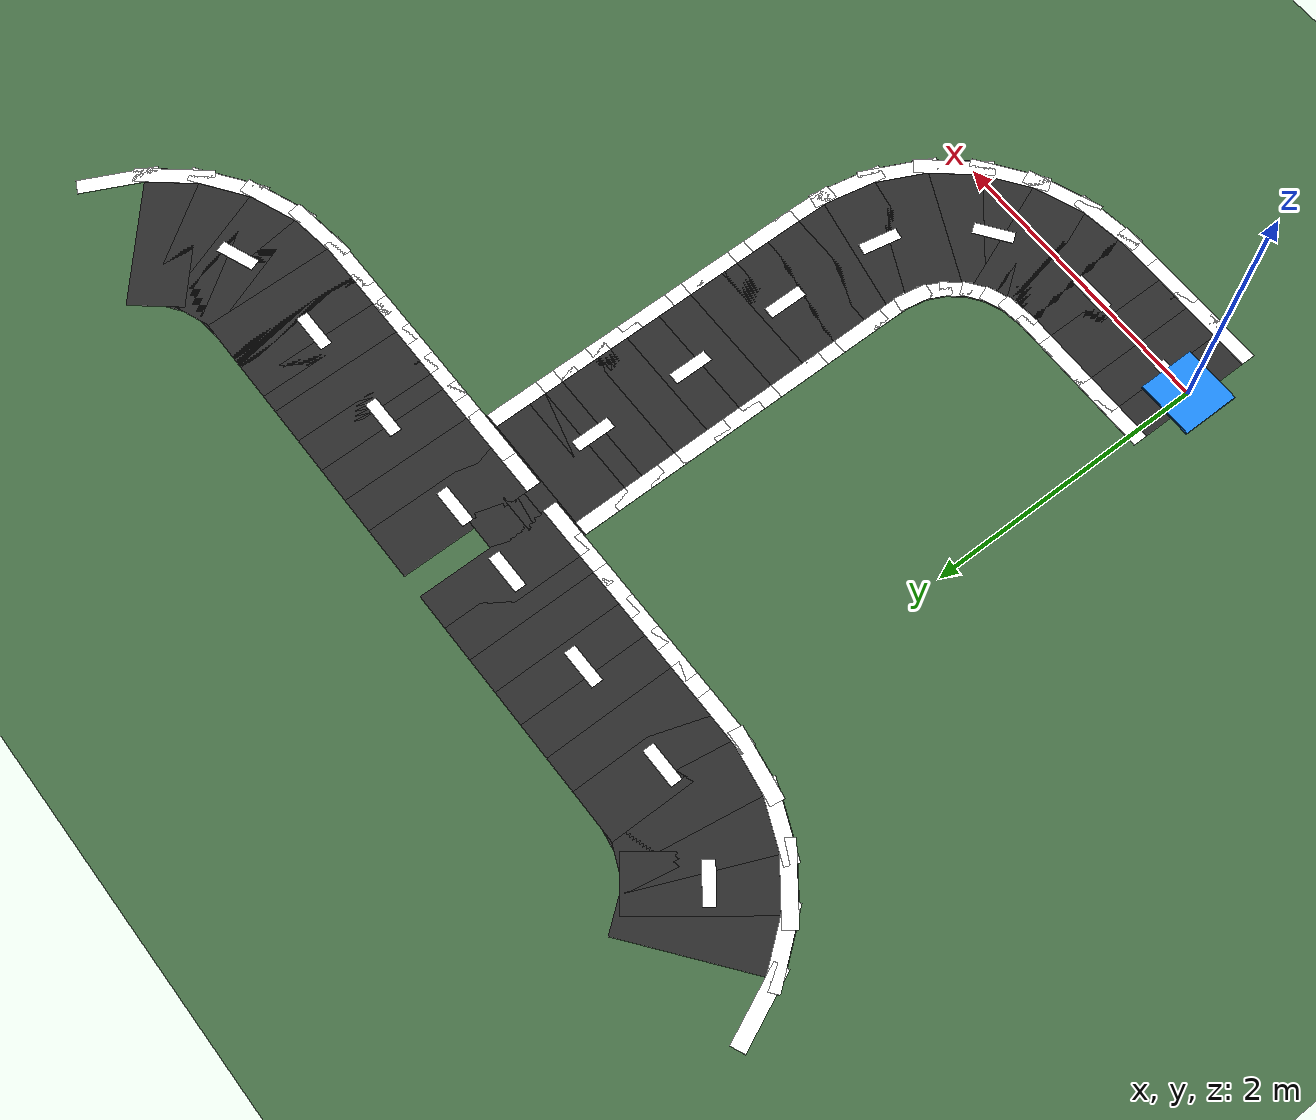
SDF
<sdf version="1.6">
 <world name="university_track">
  <model name="ground_plane">
   <static>true</static>
   <link name="link">
    <collision name="collision">
     <geometry><plane><normal>0 0 1</normal><size>200 200</size></plane></geometry>
    </collision>
    <visual name="visual">
     <geometry><plane><normal>0 0 1</normal><size>200 200</size></plane></geometry>
     <material><ambient>0.25 0.40 0.25 1</ambient><diffuse>0.25 0.40 0.25 1</diffuse></material>
    </visual>
   </link>
  </model>
  <model name="loop_0_0">
   <static>true</static>
   <pose>2.1250 4.0000 0.0020 0 0 0.00000</pose>
   <link name="l">
    <visual name="v">
     <geometry><box><size>0.3700 1.0000 0.0020</size></box></geometry>
     <material><ambient>0.15 0.15 0.15 1</ambient><diffuse>0.15 0.15 0.15 1</diffuse></material>
    </visual>
   </link>
  </model>
  <model name="loop_1_0">
   <static>true</static>
   <pose>2.3750 4.0000 0.0020 0 0 0.00000</pose>
   <link name="l">
    <visual name="v">
     <geometry><box><size>0.3700 1.0000 0.0020</size></box></geometry>
     <material><ambient>0.15 0.15 0.15 1</ambient><diffuse>0.15 0.15 0.15 1</diffuse></material>
    </visual>
   </link>
  </model>
  <model name="loop_2_0">
   <static>true</static>
   <pose>2.6250 4.0000 0.0020 0 0 0.00000</pose>
   <link name="l">
    <visual name="v">
     <geometry><box><size>0.3700 1.0000 0.0020</size></box></geometry>
     <material><ambient>0.15 0.15 0.15 1</ambient><diffuse>0.15 0.15 0.15 1</diffuse></material>
    </visual>
   </link>
  </model>
  <model name="loop_3_0">
   <static>true</static>
   <pose>2.8750 4.0000 0.0020 0 0 0.00000</pose>
   <link name="l">
    <visual name="v">
     <geometry><box><size>0.3700 1.0000 0.0020</size></box></geometry>
     <material><ambient>0.15 0.15 0.15 1</ambient><diffuse>0.15 0.15 0.15 1</diffuse></material>
    </visual>
   </link>
  </model>
  <model name="loop_4_0">
   <static>true</static>
   <pose>3.1250 4.0000 0.0020 0 0 0.00000</pose>
   <link name="l">
    <visual name="v">
     <geometry><box><size>0.3700 1.0000 0.0020</size></box></geometry>
     <material><ambient>0.15 0.15 0.15 1</ambient><diffuse>0.15 0.15 0.15 1</diffuse></material>
    </visual>
   </link>
  </model>
  <model name="loop_5_0">
   <static>true</static>
   <pose>3.3750 4.0000 0.0020 0 0 0.00000</pose>
   <link name="l">
    <visual name="v">
     <geometry><box><size>0.3700 1.0000 0.0020</size></box></geometry>
     <material><ambient>0.15 0.15 0.15 1</ambient><diffuse>0.15 0.15 0.15 1</diffuse></material>
    </visual>
   </link>
  </model>
  <model name="loop_6_0">
   <static>true</static>
   <pose>3.6250 4.0000 0.0020 0 0 0.00000</pose>
   <link name="l">
    <visual name="v">
     <geometry><box><size>0.3700 1.0000 0.0020</size></box></geometry>
     <material><ambient>0.15 0.15 0.15 1</ambient><diffuse>0.15 0.15 0.15 1</diffuse></material>
    </visual>
   </link>
  </model>
  <model name="loop_7_0">
   <static>true</static>
   <pose>3.8750 4.0000 0.0020 0 0 0.00000</pose>
   <link name="l">
    <visual name="v">
     <geometry><box><size>0.3700 1.0000 0.0020</size></box></geometry>
     <material><ambient>0.15 0.15 0.15 1</ambient><diffuse>0.15 0.15 0.15 1</diffuse></material>
    </visual>
   </link>
  </model>
  <model name="loop_8_0">
   <static>true</static>
   <pose>4.1236 4.0162 0.0020 0 0 0.13023</pose>
   <link name="l">
    <visual name="v">
     <geometry><box><size>0.3690 1.0000 0.0020</size></box></geometry>
     <material><ambient>0.15 0.15 0.15 1</ambient><diffuse>0.15 0.15 0.15 1</diffuse></material>
    </visual>
   </link>
  </model>
  <model name="loop_9_0">
   <static>true</static>
   <pose>4.3632 4.0779 0.0020 0 0 0.37377</pose>
   <link name="l">
    <visual name="v">
     <geometry><box><size>0.3689 1.0000 0.0020</size></box></geometry>
     <material><ambient>0.15 0.15 0.15 1</ambient><diffuse>0.15 0.15 0.15 1</diffuse></material>
    </visual>
   </link>
  </model>
  <model name="loop_10_0">
   <static>true</static>
   <pose>4.5803 4.1962 0.0020 0 0 0.62451</pose>
   <link name="l">
    <visual name="v">
     <geometry><box><size>0.3689 1.0000 0.0020</size></box></geometry>
     <material><ambient>0.15 0.15 0.15 1</ambient><diffuse>0.15 0.15 0.15 1</diffuse></material>
    </visual>
   </link>
  </model>
  <model name="loop_11_0">
   <static>true</static>
   <pose>4.7610 4.3650 0.0020 0 0 0.87778</pose>
   <link name="l">
    <visual name="v">
     <geometry><box><size>0.3689 1.0000 0.0020</size></box></geometry>
     <material><ambient>0.15 0.15 0.15 1</ambient><diffuse>0.15 0.15 0.15 1</diffuse></material>
    </visual>
   </link>
  </model>
  <model name="loop_77_0">
   <static>true</static>
   <pose>-0.7801 4.3881 0.0020 0 0 -0.90977</pose>
   <link name="l">
    <visual name="v">
     <geometry><box><size>0.3690 1.0000 0.0020</size></box></geometry>
     <material><ambient>0.15 0.15 0.15 1</ambient><diffuse>0.15 0.15 0.15 1</diffuse></material>
    </visual>
   </link>
  </model>
  <model name="loop_78_0">
   <static>true</static>
   <pose>-0.6045 4.2142 0.0020 0 0 -0.65125</pose>
   <link name="l">
    <visual name="v">
     <geometry><box><size>0.3690 1.0000 0.0020</size></box></geometry>
     <material><ambient>0.15 0.15 0.15 1</ambient><diffuse>0.15 0.15 0.15 1</diffuse></material>
    </visual>
   </link>
  </model>
  <model name="loop_79_0">
   <static>true</static>
   <pose>-0.3910 4.0893 0.0020 0 0 -0.40771</pose>
   <link name="l">
    <visual name="v">
     <geometry><box><size>0.3689 1.0000 0.0020</size></box></geometry>
     <material><ambient>0.15 0.15 0.15 1</ambient><diffuse>0.15 0.15 0.15 1</diffuse></material>
    </visual>
   </link>
  </model>
  <model name="loop_80_0">
   <static>true</static>
   <pose>-0.1535 4.0203 0.0020 0 0 -0.15731</pose>
   <link name="l">
    <visual name="v">
     <geometry><box><size>0.3690 1.0000 0.0020</size></box></geometry>
     <material><ambient>0.15 0.15 0.15 1</ambient><diffuse>0.15 0.15 0.15 1</diffuse></material>
    </visual>
   </link>
  </model>
  <model name="loop_81_0">
   <static>true</static>
   <pose>0.0946 4.0004 0.0020 0 0 -0.00318</pose>
   <link name="l">
    <visual name="v">
     <geometry><box><size>0.3700 1.0000 0.0020</size></box></geometry>
     <material><ambient>0.15 0.15 0.15 1</ambient><diffuse>0.15 0.15 0.15 1</diffuse></material>
    </visual>
   </link>
  </model>
  <model name="loop_82_0">
   <static>true</static>
   <pose>0.3446 4.0000 0.0020 0 0 0.00000</pose>
   <link name="l">
    <visual name="v">
     <geometry><box><size>0.3700 1.0000 0.0020</size></box></geometry>
     <material><ambient>0.15 0.15 0.15 1</ambient><diffuse>0.15 0.15 0.15 1</diffuse></material>
    </visual>
   </link>
  </model>
  <model name="loop_83_0">
   <static>true</static>
   <pose>0.5946 4.0000 0.0020 0 0 0.00000</pose>
   <link name="l">
    <visual name="v">
     <geometry><box><size>0.3700 1.0000 0.0020</size></box></geometry>
     <material><ambient>0.15 0.15 0.15 1</ambient><diffuse>0.15 0.15 0.15 1</diffuse></material>
    </visual>
   </link>
  </model>
  <model name="loop_84_0">
   <static>true</static>
   <pose>0.8446 4.0000 0.0020 0 0 -0.00000</pose>
   <link name="l">
    <visual name="v">
     <geometry><box><size>0.3700 1.0000 0.0020</size></box></geometry>
     <material><ambient>0.15 0.15 0.15 1</ambient><diffuse>0.15 0.15 0.15 1</diffuse></material>
    </visual>
   </link>
  </model>
  <model name="loop_85_0">
   <static>true</static>
   <pose>1.0946 4.0000 0.0020 0 0 0.00000</pose>
   <link name="l">
    <visual name="v">
     <geometry><box><size>0.3700 1.0000 0.0020</size></box></geometry>
     <material><ambient>0.15 0.15 0.15 1</ambient><diffuse>0.15 0.15 0.15 1</diffuse></material>
    </visual>
   </link>
  </model>
  <model name="loop_86_0">
   <static>true</static>
   <pose>1.3446 4.0000 0.0020 0 0 0.00000</pose>
   <link name="l">
    <visual name="v">
     <geometry><box><size>0.3700 1.0000 0.0020</size></box></geometry>
     <material><ambient>0.15 0.15 0.15 1</ambient><diffuse>0.15 0.15 0.15 1</diffuse></material>
    </visual>
   </link>
  </model>
  <model name="loop_87_0">
   <static>true</static>
   <pose>1.5946 4.0000 0.0020 0 0 0.00000</pose>
   <link name="l">
    <visual name="v">
     <geometry><box><size>0.3700 1.0000 0.0020</size></box></geometry>
     <material><ambient>0.15 0.15 0.15 1</ambient><diffuse>0.15 0.15 0.15 1</diffuse></material>
    </visual>
   </link>
  </model>
  <model name="loop_re_0_0">
   <static>true</static>
   <pose>2.1250 3.5500 0.0050 0 0 0.00000</pose>
   <link name="l">
    <visual name="v">
     <geometry><box><size>0.3700 0.1000 0.0020</size></box></geometry>
     <material><ambient>1.0 1.0 1.0 1</ambient><diffuse>1.0 1.0 1.0 1</diffuse></material>
    </visual>
   </link>
  </model>
  <model name="loop_re_1_0">
   <static>true</static>
   <pose>2.3750 3.5500 0.0050 0 0 0.00000</pose>
   <link name="l">
    <visual name="v">
     <geometry><box><size>0.3700 0.1000 0.0020</size></box></geometry>
     <material><ambient>1.0 1.0 1.0 1</ambient><diffuse>1.0 1.0 1.0 1</diffuse></material>
    </visual>
   </link>
  </model>
  <model name="loop_re_2_0">
   <static>true</static>
   <pose>2.6250 3.5500 0.0050 0 0 0.00000</pose>
   <link name="l">
    <visual name="v">
     <geometry><box><size>0.3700 0.1000 0.0020</size></box></geometry>
     <material><ambient>1.0 1.0 1.0 1</ambient><diffuse>1.0 1.0 1.0 1</diffuse></material>
    </visual>
   </link>
  </model>
  <model name="loop_re_3_0">
   <static>true</static>
   <pose>2.8750 3.5500 0.0050 0 0 0.00000</pose>
   <link name="l">
    <visual name="v">
     <geometry><box><size>0.3700 0.1000 0.0020</size></box></geometry>
     <material><ambient>1.0 1.0 1.0 1</ambient><diffuse>1.0 1.0 1.0 1</diffuse></material>
    </visual>
   </link>
  </model>
  <model name="loop_re_4_0">
   <static>true</static>
   <pose>3.1250 3.5500 0.0050 0 0 0.00000</pose>
   <link name="l">
    <visual name="v">
     <geometry><box><size>0.3700 0.1000 0.0020</size></box></geometry>
     <material><ambient>1.0 1.0 1.0 1</ambient><diffuse>1.0 1.0 1.0 1</diffuse></material>
    </visual>
   </link>
  </model>
  <model name="loop_re_5_0">
   <static>true</static>
   <pose>3.3750 3.5500 0.0050 0 0 0.00000</pose>
   <link name="l">
    <visual name="v">
     <geometry><box><size>0.3700 0.1000 0.0020</size></box></geometry>
     <material><ambient>1.0 1.0 1.0 1</ambient><diffuse>1.0 1.0 1.0 1</diffuse></material>
    </visual>
   </link>
  </model>
  <model name="loop_re_6_0">
   <static>true</static>
   <pose>3.6250 3.5500 0.0050 0 0 0.00000</pose>
   <link name="l">
    <visual name="v">
     <geometry><box><size>0.3700 0.1000 0.0020</size></box></geometry>
     <material><ambient>1.0 1.0 1.0 1</ambient><diffuse>1.0 1.0 1.0 1</diffuse></material>
    </visual>
   </link>
  </model>
  <model name="loop_re_7_0">
   <static>true</static>
   <pose>3.8896 3.5505 0.0050 0 0 0.00341</pose>
   <link name="l">
    <visual name="v">
     <geometry><box><size>0.4109 0.1000 0.0020</size></box></geometry>
     <material><ambient>1.0 1.0 1.0 1</ambient><diffuse>1.0 1.0 1.0 1</diffuse></material>
    </visual>
   </link>
  </model>
  <model name="loop_re_8_0">
   <static>true</static>
   <pose>4.1943 3.5738 0.0050 0 0 0.13736</pose>
   <link name="l">
    <visual name="v">
     <geometry><box><size>0.4866 0.1000 0.0020</size></box></geometry>
     <material><ambient>1.0 1.0 1.0 1</ambient><diffuse>1.0 1.0 1.0 1</diffuse></material>
    </visual>
   </link>
  </model>
  <model name="loop_re_9_0">
   <static>true</static>
   <pose>4.5270 3.6624 0.0050 0 0 0.37433</pose>
   <link name="l">
    <visual name="v">
     <geometry><box><size>0.5242 0.1000 0.0020</size></box></geometry>
     <material><ambient>1.0 1.0 1.0 1</ambient><diffuse>1.0 1.0 1.0 1</diffuse></material>
    </visual>
   </link>
  </model>
  <model name="loop_re_10_0">
   <static>true</static>
   <pose>4.8415 3.8342 0.0050 0 0 0.62471</pose>
   <link name="l">
    <visual name="v">
     <geometry><box><size>0.5272 0.1000 0.0020</size></box></geometry>
     <material><ambient>1.0 1.0 1.0 1</ambient><diffuse>1.0 1.0 1.0 1</diffuse></material>
    </visual>
   </link>
  </model>
  <model name="loop_re_11_0">
   <static>true</static>
   <pose>5.1038 4.0788 0.0050 0 0 0.87703</pose>
   <link name="l">
    <visual name="v">
     <geometry><box><size>0.5250 0.1000 0.0020</size></box></geometry>
     <material><ambient>1.0 1.0 1.0 1</ambient><diffuse>1.0 1.0 1.0 1</diffuse></material>
    </visual>
   </link>
  </model>
  <model name="loop_re_12_0">
   <static>true</static>
   <pose>5.2976 4.3805 0.0050 0 0 1.12244</pose>
   <link name="l">
    <visual name="v">
     <geometry><box><size>0.5265 0.1000 0.0020</size></box></geometry>
     <material><ambient>1.0 1.0 1.0 1</ambient><diffuse>1.0 1.0 1.0 1</diffuse></material>
    </visual>
   </link>
  </model>
  <model name="loop_re_76_0">
   <static>true</static>
   <pose>-1.3156 4.4204 0.0050 0 0 -1.15541</pose>
   <link name="l">
    <visual name="v">
     <geometry><box><size>0.5238 0.1000 0.0020</size></box></geometry>
     <material><ambient>1.0 1.0 1.0 1</ambient><diffuse>1.0 1.0 1.0 1</diffuse></material>
    </visual>
   </link>
  </model>
  <model name="loop_re_77_0">
   <static>true</static>
   <pose>-1.1316 4.1129 0.0050 0 0 -0.90875</pose>
   <link name="l">
    <visual name="v">
     <geometry><box><size>0.5273 0.1000 0.0020</size></box></geometry>
     <material><ambient>1.0 1.0 1.0 1</ambient><diffuse>1.0 1.0 1.0 1</diffuse></material>
    </visual>
   </link>
  </model>
  <model name="loop_re_78_0">
   <static>true</static>
   <pose>-0.8765 3.8602 0.0050 0 0 -0.65242</pose>
   <link name="l">
    <visual name="v">
     <geometry><box><size>0.5267 0.1000 0.0020</size></box></geometry>
     <material><ambient>1.0 1.0 1.0 1</ambient><diffuse>1.0 1.0 1.0 1</diffuse></material>
    </visual>
   </link>
  </model>
  <model name="loop_re_79_0">
   <static>true</static>
   <pose>-0.5674 3.6790 0.0050 0 0 -0.40718</pose>
   <link name="l">
    <visual name="v">
     <geometry><box><size>0.5241 0.1000 0.0020</size></box></geometry>
     <material><ambient>1.0 1.0 1.0 1</ambient><diffuse>1.0 1.0 1.0 1</diffuse></material>
    </visual>
   </link>
  </model>
  <model name="loop_re_80_0">
   <static>true</static>
   <pose>-0.2342 3.5800 0.0050 0 0 -0.16372</pose>
   <link name="l">
    <visual name="v">
     <geometry><box><size>0.4962 0.1000 0.0020</size></box></geometry>
     <material><ambient>1.0 1.0 1.0 1</ambient><diffuse>1.0 1.0 1.0 1</diffuse></material>
    </visual>
   </link>
  </model>
  <model name="loop_re_81_0">
   <static>true</static>
   <pose>0.0762 3.5511 0.0050 0 0 -0.00785</pose>
   <link name="l">
    <visual name="v">
     <geometry><box><size>0.4194 0.1000 0.0020</size></box></geometry>
     <material><ambient>1.0 1.0 1.0 1</ambient><diffuse>1.0 1.0 1.0 1</diffuse></material>
    </visual>
   </link>
  </model>
  <model name="loop_re_82_0">
   <static>true</static>
   <pose>0.3443 3.5500 0.0050 0 0 -0.00000</pose>
   <link name="l">
    <visual name="v">
     <geometry><box><size>0.3710 0.1000 0.0020</size></box></geometry>
     <material><ambient>1.0 1.0 1.0 1</ambient><diffuse>1.0 1.0 1.0 1</diffuse></material>
    </visual>
   </link>
  </model>
  <model name="loop_re_83_0">
   <static>true</static>
   <pose>0.5946 3.5500 0.0050 0 0 0.00000</pose>
   <link name="l">
    <visual name="v">
     <geometry><box><size>0.3700 0.1000 0.0020</size></box></geometry>
     <material><ambient>1.0 1.0 1.0 1</ambient><diffuse>1.0 1.0 1.0 1</diffuse></material>
    </visual>
   </link>
  </model>
  <model name="loop_re_84_0">
   <static>true</static>
   <pose>0.8446 3.5500 0.0050 0 0 -0.00000</pose>
   <link name="l">
    <visual name="v">
     <geometry><box><size>0.3700 0.1000 0.0020</size></box></geometry>
     <material><ambient>1.0 1.0 1.0 1</ambient><diffuse>1.0 1.0 1.0 1</diffuse></material>
    </visual>
   </link>
  </model>
  <model name="loop_re_85_0">
   <static>true</static>
   <pose>1.0946 3.5500 0.0050 0 0 0.00000</pose>
   <link name="l">
    <visual name="v">
     <geometry><box><size>0.3700 0.1000 0.0020</size></box></geometry>
     <material><ambient>1.0 1.0 1.0 1</ambient><diffuse>1.0 1.0 1.0 1</diffuse></material>
    </visual>
   </link>
  </model>
  <model name="loop_re_86_0">
   <static>true</static>
   <pose>1.3446 3.5500 0.0050 0 0 0.00000</pose>
   <link name="l">
    <visual name="v">
     <geometry><box><size>0.3700 0.1000 0.0020</size></box></geometry>
     <material><ambient>1.0 1.0 1.0 1</ambient><diffuse>1.0 1.0 1.0 1</diffuse></material>
    </visual>
   </link>
  </model>
  <model name="loop_re_87_0">
   <static>true</static>
   <pose>1.5946 3.5500 0.0050 0 0 0.00000</pose>
   <link name="l">
    <visual name="v">
     <geometry><box><size>0.3700 0.1000 0.0020</size></box></geometry>
     <material><ambient>1.0 1.0 1.0 1</ambient><diffuse>1.0 1.0 1.0 1</diffuse></material>
    </visual>
   </link>
  </model>
  <model name="loop_cd_0_0">
   <static>true</static>
   <pose>2.1250 4.0000 0.0050 0 0 0.00000</pose>
   <link name="l">
    <visual name="v">
     <geometry><box><size>0.2700 0.0800 0.0020</size></box></geometry>
     <material><ambient>1.0 1.0 1.0 1</ambient><diffuse>1.0 1.0 1.0 1</diffuse></material>
    </visual>
   </link>
  </model>
  <model name="loop_cd_3_0">
   <static>true</static>
   <pose>2.8750 4.0000 0.0050 0 0 0.00000</pose>
   <link name="l">
    <visual name="v">
     <geometry><box><size>0.2700 0.0800 0.0020</size></box></geometry>
     <material><ambient>1.0 1.0 1.0 1</ambient><diffuse>1.0 1.0 1.0 1</diffuse></material>
    </visual>
   </link>
  </model>
  <model name="loop_cd_6_0">
   <static>true</static>
   <pose>3.6250 4.0000 0.0050 0 0 0.00000</pose>
   <link name="l">
    <visual name="v">
     <geometry><box><size>0.2700 0.0800 0.0020</size></box></geometry>
     <material><ambient>1.0 1.0 1.0 1</ambient><diffuse>1.0 1.0 1.0 1</diffuse></material>
    </visual>
   </link>
  </model>
  <model name="loop_cd_9_0">
   <static>true</static>
   <pose>4.3632 4.0779 0.0050 0 0 0.37377</pose>
   <link name="l">
    <visual name="v">
     <geometry><box><size>0.2692 0.0800 0.0020</size></box></geometry>
     <material><ambient>1.0 1.0 1.0 1</ambient><diffuse>1.0 1.0 1.0 1</diffuse></material>
    </visual>
   </link>
  </model>
  <model name="loop_cd_78_0">
   <static>true</static>
   <pose>-0.6045 4.2142 0.0050 0 0 -0.65125</pose>
   <link name="l">
    <visual name="v">
     <geometry><box><size>0.2693 0.0800 0.0020</size></box></geometry>
     <material><ambient>1.0 1.0 1.0 1</ambient><diffuse>1.0 1.0 1.0 1</diffuse></material>
    </visual>
   </link>
  </model>
  <model name="loop_cd_81_0">
   <static>true</static>
   <pose>0.0946 4.0004 0.0050 0 0 -0.00318</pose>
   <link name="l">
    <visual name="v">
     <geometry><box><size>0.2700 0.0800 0.0020</size></box></geometry>
     <material><ambient>1.0 1.0 1.0 1</ambient><diffuse>1.0 1.0 1.0 1</diffuse></material>
    </visual>
   </link>
  </model>
  <model name="loop_cd_84_0">
   <static>true</static>
   <pose>0.8446 4.0000 0.0050 0 0 -0.00000</pose>
   <link name="l">
    <visual name="v">
     <geometry><box><size>0.2700 0.0800 0.0020</size></box></geometry>
     <material><ambient>1.0 1.0 1.0 1</ambient><diffuse>1.0 1.0 1.0 1</diffuse></material>
    </visual>
   </link>
  </model>
  <model name="loop_cd_87_0">
   <static>true</static>
   <pose>1.5946 4.0000 0.0050 0 0 0.00000</pose>
   <link name="l">
    <visual name="v">
     <geometry><box><size>0.2700 0.0800 0.0020</size></box></geometry>
     <material><ambient>1.0 1.0 1.0 1</ambient><diffuse>1.0 1.0 1.0 1</diffuse></material>
    </visual>
   </link>
  </model>
  <model name="branch_0_0">
   <static>true</static>
   <pose>0.1250 0.0000 0.0020 0 0 0.00000</pose>
   <link name="l">
    <visual name="v">
     <geometry><box><size>0.3700 1.0000 0.0020</size></box></geometry>
     <material><ambient>0.15 0.15 0.15 1</ambient><diffuse>0.15 0.15 0.15 1</diffuse></material>
    </visual>
   </link>
  </model>
  <model name="branch_1_0">
   <static>true</static>
   <pose>0.3750 0.0000 0.0020 0 0 0.00000</pose>
   <link name="l">
    <visual name="v">
     <geometry><box><size>0.3700 1.0000 0.0020</size></box></geometry>
     <material><ambient>0.15 0.15 0.15 1</ambient><diffuse>0.15 0.15 0.15 1</diffuse></material>
    </visual>
   </link>
  </model>
  <model name="branch_2_0">
   <static>true</static>
   <pose>0.6250 0.0000 0.0020 0 0 0.00000</pose>
   <link name="l">
    <visual name="v">
     <geometry><box><size>0.3700 1.0000 0.0020</size></box></geometry>
     <material><ambient>0.15 0.15 0.15 1</ambient><diffuse>0.15 0.15 0.15 1</diffuse></material>
    </visual>
   </link>
  </model>
  <model name="branch_3_0">
   <static>true</static>
   <pose>0.8750 0.0000 0.0020 0 0 0.00000</pose>
   <link name="l">
    <visual name="v">
     <geometry><box><size>0.3700 1.0000 0.0020</size></box></geometry>
     <material><ambient>0.15 0.15 0.15 1</ambient><diffuse>0.15 0.15 0.15 1</diffuse></material>
    </visual>
   </link>
  </model>
  <model name="branch_4_0">
   <static>true</static>
   <pose>1.1236 0.0162 0.0020 0 0 0.13023</pose>
   <link name="l">
    <visual name="v">
     <geometry><box><size>0.3690 1.0000 0.0020</size></box></geometry>
     <material><ambient>0.15 0.15 0.15 1</ambient><diffuse>0.15 0.15 0.15 1</diffuse></material>
    </visual>
   </link>
  </model>
  <model name="branch_5_0">
   <static>true</static>
   <pose>1.3632 0.0779 0.0020 0 0 0.37377</pose>
   <link name="l">
    <visual name="v">
     <geometry><box><size>0.3689 1.0000 0.0020</size></box></geometry>
     <material><ambient>0.15 0.15 0.15 1</ambient><diffuse>0.15 0.15 0.15 1</diffuse></material>
    </visual>
   </link>
  </model>
  <model name="branch_6_0">
   <static>true</static>
   <pose>1.5803 0.1962 0.0020 0 0 0.62451</pose>
   <link name="l">
    <visual name="v">
     <geometry><box><size>0.3689 1.0000 0.0020</size></box></geometry>
     <material><ambient>0.15 0.15 0.15 1</ambient><diffuse>0.15 0.15 0.15 1</diffuse></material>
    </visual>
   </link>
  </model>
  <model name="branch_7_0">
   <static>true</static>
   <pose>1.7610 0.3650 0.0020 0 0 0.87778</pose>
   <link name="l">
    <visual name="v">
     <geometry><box><size>0.3689 1.0000 0.0020</size></box></geometry>
     <material><ambient>0.15 0.15 0.15 1</ambient><diffuse>0.15 0.15 0.15 1</diffuse></material>
    </visual>
   </link>
  </model>
  <model name="branch_8_0">
   <static>true</static>
   <pose>1.8947 0.5731 0.0020 0 0 1.12132</pose>
   <link name="l">
    <visual name="v">
     <geometry><box><size>0.3690 1.0000 0.0020</size></box></geometry>
     <material><ambient>0.15 0.15 0.15 1</ambient><diffuse>0.15 0.15 0.15 1</diffuse></material>
    </visual>
   </link>
  </model>
  <model name="branch_9_0">
   <static>true</static>
   <pose>1.9726 0.8077 0.0020 0 0 1.37926</pose>
   <link name="l">
    <visual name="v">
     <geometry><box><size>0.3690 1.0000 0.0020</size></box></geometry>
     <material><ambient>0.15 0.15 0.15 1</ambient><diffuse>0.15 0.15 0.15 1</diffuse></material>
    </visual>
   </link>
  </model>
  <model name="branch_10_0">
   <static>true</static>
   <pose>1.9982 1.0550 0.0020 0 0 1.55612</pose>
   <link name="l">
    <visual name="v">
     <geometry><box><size>0.3699 1.0000 0.0020</size></box></geometry>
     <material><ambient>0.15 0.15 0.15 1</ambient><diffuse>0.15 0.15 0.15 1</diffuse></material>
    </visual>
   </link>
  </model>
  <model name="branch_11_0">
   <static>true</static>
   <pose>2.0000 1.3049 0.0020 0 0 1.57080</pose>
   <link name="l">
    <visual name="v">
     <geometry><box><size>0.3700 1.0000 0.0020</size></box></geometry>
     <material><ambient>0.15 0.15 0.15 1</ambient><diffuse>0.15 0.15 0.15 1</diffuse></material>
    </visual>
   </link>
  </model>
  <model name="branch_12_0">
   <static>true</static>
   <pose>2.0000 1.5549 0.0020 0 0 1.57080</pose>
   <link name="l">
    <visual name="v">
     <geometry><box><size>0.3700 1.0000 0.0020</size></box></geometry>
     <material><ambient>0.15 0.15 0.15 1</ambient><diffuse>0.15 0.15 0.15 1</diffuse></material>
    </visual>
   </link>
  </model>
  <model name="branch_13_0">
   <static>true</static>
   <pose>2.0000 1.8049 0.0020 0 0 1.57080</pose>
   <link name="l">
    <visual name="v">
     <geometry><box><size>0.3700 1.0000 0.0020</size></box></geometry>
     <material><ambient>0.15 0.15 0.15 1</ambient><diffuse>0.15 0.15 0.15 1</diffuse></material>
    </visual>
   </link>
  </model>
  <model name="branch_14_0">
   <static>true</static>
   <pose>2.0000 2.0549 0.0020 0 0 1.57080</pose>
   <link name="l">
    <visual name="v">
     <geometry><box><size>0.3700 1.0000 0.0020</size></box></geometry>
     <material><ambient>0.15 0.15 0.15 1</ambient><diffuse>0.15 0.15 0.15 1</diffuse></material>
    </visual>
   </link>
  </model>
  <model name="branch_15_0">
   <static>true</static>
   <pose>2.0000 2.3049 0.0020 0 0 1.57080</pose>
   <link name="l">
    <visual name="v">
     <geometry><box><size>0.3700 1.0000 0.0020</size></box></geometry>
     <material><ambient>0.15 0.15 0.15 1</ambient><diffuse>0.15 0.15 0.15 1</diffuse></material>
    </visual>
   </link>
  </model>
  <model name="branch_16_0">
   <static>true</static>
   <pose>2.0000 2.5549 0.0020 0 0 1.57080</pose>
   <link name="l">
    <visual name="v">
     <geometry><box><size>0.3700 1.0000 0.0020</size></box></geometry>
     <material><ambient>0.15 0.15 0.15 1</ambient><diffuse>0.15 0.15 0.15 1</diffuse></material>
    </visual>
   </link>
  </model>
  <model name="branch_17_0">
   <static>true</static>
   <pose>2.0000 2.8049 0.0020 0 0 1.57080</pose>
   <link name="l">
    <visual name="v">
     <geometry><box><size>0.3700 1.0000 0.0020</size></box></geometry>
     <material><ambient>0.15 0.15 0.15 1</ambient><diffuse>0.15 0.15 0.15 1</diffuse></material>
    </visual>
   </link>
  </model>
  <model name="branch_18_0">
   <static>true</static>
   <pose>2.0000 3.0549 0.0020 0 0 1.57080</pose>
   <link name="l">
    <visual name="v">
     <geometry><box><size>0.3700 1.0000 0.0020</size></box></geometry>
     <material><ambient>0.15 0.15 0.15 1</ambient><diffuse>0.15 0.15 0.15 1</diffuse></material>
    </visual>
   </link>
  </model>
  <model name="branch_19_0">
   <static>true</static>
   <pose>2.0000 3.3049 0.0020 0 0 1.57080</pose>
   <link name="l">
    <visual name="v">
     <geometry><box><size>0.3700 1.0000 0.0020</size></box></geometry>
     <material><ambient>0.15 0.15 0.15 1</ambient><diffuse>0.15 0.15 0.15 1</diffuse></material>
    </visual>
   </link>
  </model>
  <model name="branch_20_0">
   <static>true</static>
   <pose>2.0000 3.5549 0.0020 0 0 1.57080</pose>
   <link name="l">
    <visual name="v">
     <geometry><box><size>0.3700 1.0000 0.0020</size></box></geometry>
     <material><ambient>0.15 0.15 0.15 1</ambient><diffuse>0.15 0.15 0.15 1</diffuse></material>
    </visual>
   </link>
  </model>
  <model name="branch_21_0">
   <static>true</static>
   <pose>2.0000 3.8049 0.0020 0 0 1.57080</pose>
   <link name="l">
    <visual name="v">
     <geometry><box><size>0.3700 1.0000 0.0020</size></box></geometry>
     <material><ambient>0.15 0.15 0.15 1</ambient><diffuse>0.15 0.15 0.15 1</diffuse></material>
    </visual>
   </link>
  </model>
  <model name="branch_le_0_0">
   <static>true</static>
   <pose>0.1250 0.4500 0.0050 0 0 0.00000</pose>
   <link name="l">
    <visual name="v">
     <geometry><box><size>0.3700 0.1000 0.0020</size></box></geometry>
     <material><ambient>1.0 1.0 1.0 1</ambient><diffuse>1.0 1.0 1.0 1</diffuse></material>
    </visual>
   </link>
  </model>
  <model name="branch_le_1_0">
   <static>true</static>
   <pose>0.3750 0.4500 0.0050 0 0 0.00000</pose>
   <link name="l">
    <visual name="v">
     <geometry><box><size>0.3700 0.1000 0.0020</size></box></geometry>
     <material><ambient>1.0 1.0 1.0 1</ambient><diffuse>1.0 1.0 1.0 1</diffuse></material>
    </visual>
   </link>
  </model>
  <model name="branch_le_2_0">
   <static>true</static>
   <pose>0.6250 0.4500 0.0050 0 0 0.00000</pose>
   <link name="l">
    <visual name="v">
     <geometry><box><size>0.3700 0.1000 0.0020</size></box></geometry>
     <material><ambient>1.0 1.0 1.0 1</ambient><diffuse>1.0 1.0 1.0 1</diffuse></material>
    </visual>
   </link>
  </model>
  <model name="branch_le_3_0">
   <static>true</static>
   <pose>0.8604 0.4495 0.0050 0 0 -0.00431</pose>
   <link name="l">
    <visual name="v">
     <geometry><box><size>0.3291 0.1000 0.0020</size></box></geometry>
     <material><ambient>1.0 1.0 1.0 1</ambient><diffuse>1.0 1.0 1.0 1</diffuse></material>
    </visual>
   </link>
  </model>
  <model name="branch_le_4_0">
   <static>true</static>
   <pose>1.0529 0.4586 0.0050 0 0 0.11587</pose>
   <link name="l">
    <visual name="v">
     <geometry><box><size>0.2515 0.1000 0.0020</size></box></geometry>
     <material><ambient>1.0 1.0 1.0 1</ambient><diffuse>1.0 1.0 1.0 1</diffuse></material>
    </visual>
   </link>
  </model>
  <model name="branch_le_5_0">
   <static>true</static>
   <pose>1.1994 0.4933 0.0050 0 0 0.37234</pose>
   <link name="l">
    <visual name="v">
     <geometry><box><size>0.2136 0.1000 0.0020</size></box></geometry>
     <material><ambient>1.0 1.0 1.0 1</ambient><diffuse>1.0 1.0 1.0 1</diffuse></material>
    </visual>
   </link>
  </model>
  <model name="branch_le_6_0">
   <static>true</static>
   <pose>1.3190 0.5582 0.0050 0 0 0.62399</pose>
   <link name="l">
    <visual name="v">
     <geometry><box><size>0.2106 0.1000 0.0020</size></box></geometry>
     <material><ambient>1.0 1.0 1.0 1</ambient><diffuse>1.0 1.0 1.0 1</diffuse></material>
    </visual>
   </link>
  </model>
  <model name="branch_le_7_0">
   <static>true</static>
   <pose>1.4181 0.6511 0.0050 0 0 0.87974</pose>
   <link name="l">
    <visual name="v">
     <geometry><box><size>0.2128 0.1000 0.0020</size></box></geometry>
     <material><ambient>1.0 1.0 1.0 1</ambient><diffuse>1.0 1.0 1.0 1</diffuse></material>
    </visual>
   </link>
  </model>
  <model name="branch_le_8_0">
   <static>true</static>
   <pose>1.4919 0.7656 0.0050 0 0 1.11835</pose>
   <link name="l">
    <visual name="v">
     <geometry><box><size>0.2114 0.1000 0.0020</size></box></geometry>
     <material><ambient>1.0 1.0 1.0 1</ambient><diffuse>1.0 1.0 1.0 1</diffuse></material>
    </visual>
   </link>
  </model>
  <model name="branch_le_9_0">
   <static>true</static>
   <pose>1.5353 0.9017 0.0050 0 0 1.39229</pose>
   <link name="l">
    <visual name="v">
     <geometry><box><size>0.2322 0.1000 0.0020</size></box></geometry>
     <material><ambient>1.0 1.0 1.0 1</ambient><diffuse>1.0 1.0 1.0 1</diffuse></material>
    </visual>
   </link>
  </model>
  <model name="branch_le_10_0">
   <static>true</static>
   <pose>1.5494 1.0798 0.0050 0 0 1.56454</pose>
   <link name="l">
    <visual name="v">
     <geometry><box><size>0.3097 0.1000 0.0020</size></box></geometry>
     <material><ambient>1.0 1.0 1.0 1</ambient><diffuse>1.0 1.0 1.0 1</diffuse></material>
    </visual>
   </link>
  </model>
  <model name="branch_le_11_0">
   <static>true</static>
   <pose>1.5500 1.3066 0.0050 0 0 1.57085</pose>
   <link name="l">
    <visual name="v">
     <geometry><box><size>0.3654 0.1000 0.0020</size></box></geometry>
     <material><ambient>1.0 1.0 1.0 1</ambient><diffuse>1.0 1.0 1.0 1</diffuse></material>
    </visual>
   </link>
  </model>
  <model name="branch_le_12_0">
   <static>true</static>
   <pose>1.5500 1.5549 0.0050 0 0 1.57080</pose>
   <link name="l">
    <visual name="v">
     <geometry><box><size>0.3700 0.1000 0.0020</size></box></geometry>
     <material><ambient>1.0 1.0 1.0 1</ambient><diffuse>1.0 1.0 1.0 1</diffuse></material>
    </visual>
   </link>
  </model>
  <model name="branch_le_13_0">
   <static>true</static>
   <pose>1.5500 1.8049 0.0050 0 0 1.57080</pose>
   <link name="l">
    <visual name="v">
     <geometry><box><size>0.3700 0.1000 0.0020</size></box></geometry>
     <material><ambient>1.0 1.0 1.0 1</ambient><diffuse>1.0 1.0 1.0 1</diffuse></material>
    </visual>
   </link>
  </model>
  <model name="branch_le_14_0">
   <static>true</static>
   <pose>1.5500 2.0549 0.0050 0 0 1.57080</pose>
   <link name="l">
    <visual name="v">
     <geometry><box><size>0.3700 0.1000 0.0020</size></box></geometry>
     <material><ambient>1.0 1.0 1.0 1</ambient><diffuse>1.0 1.0 1.0 1</diffuse></material>
    </visual>
   </link>
  </model>
  <model name="branch_le_15_0">
   <static>true</static>
   <pose>1.5500 2.3049 0.0050 0 0 1.57080</pose>
   <link name="l">
    <visual name="v">
     <geometry><box><size>0.3700 0.1000 0.0020</size></box></geometry>
     <material><ambient>1.0 1.0 1.0 1</ambient><diffuse>1.0 1.0 1.0 1</diffuse></material>
    </visual>
   </link>
  </model>
  <model name="branch_le_16_0">
   <static>true</static>
   <pose>1.5500 2.5549 0.0050 0 0 1.57080</pose>
   <link name="l">
    <visual name="v">
     <geometry><box><size>0.3700 0.1000 0.0020</size></box></geometry>
     <material><ambient>1.0 1.0 1.0 1</ambient><diffuse>1.0 1.0 1.0 1</diffuse></material>
    </visual>
   </link>
  </model>
  <model name="branch_le_17_0">
   <static>true</static>
   <pose>1.5500 2.8049 0.0050 0 0 1.57080</pose>
   <link name="l">
    <visual name="v">
     <geometry><box><size>0.3700 0.1000 0.0020</size></box></geometry>
     <material><ambient>1.0 1.0 1.0 1</ambient><diffuse>1.0 1.0 1.0 1</diffuse></material>
    </visual>
   </link>
  </model>
  <model name="branch_le_18_0">
   <static>true</static>
   <pose>1.5500 3.0549 0.0050 0 0 1.57080</pose>
   <link name="l">
    <visual name="v">
     <geometry><box><size>0.3700 0.1000 0.0020</size></box></geometry>
     <material><ambient>1.0 1.0 1.0 1</ambient><diffuse>1.0 1.0 1.0 1</diffuse></material>
    </visual>
   </link>
  </model>
  <model name="branch_le_19_0">
   <static>true</static>
   <pose>1.5500 3.3049 0.0050 0 0 1.57080</pose>
   <link name="l">
    <visual name="v">
     <geometry><box><size>0.3700 0.1000 0.0020</size></box></geometry>
     <material><ambient>1.0 1.0 1.0 1</ambient><diffuse>1.0 1.0 1.0 1</diffuse></material>
    </visual>
   </link>
  </model>
  <model name="branch_re_0_0">
   <static>true</static>
   <pose>0.1250 -0.4500 0.0050 0 0 0.00000</pose>
   <link name="l">
    <visual name="v">
     <geometry><box><size>0.3700 0.1000 0.0020</size></box></geometry>
     <material><ambient>1.0 1.0 1.0 1</ambient><diffuse>1.0 1.0 1.0 1</diffuse></material>
    </visual>
   </link>
  </model>
  <model name="branch_re_1_0">
   <static>true</static>
   <pose>0.3750 -0.4500 0.0050 0 0 0.00000</pose>
   <link name="l">
    <visual name="v">
     <geometry><box><size>0.3700 0.1000 0.0020</size></box></geometry>
     <material><ambient>1.0 1.0 1.0 1</ambient><diffuse>1.0 1.0 1.0 1</diffuse></material>
    </visual>
   </link>
  </model>
  <model name="branch_re_2_0">
   <static>true</static>
   <pose>0.6250 -0.4500 0.0050 0 0 0.00000</pose>
   <link name="l">
    <visual name="v">
     <geometry><box><size>0.3700 0.1000 0.0020</size></box></geometry>
     <material><ambient>1.0 1.0 1.0 1</ambient><diffuse>1.0 1.0 1.0 1</diffuse></material>
    </visual>
   </link>
  </model>
  <model name="branch_re_3_0">
   <static>true</static>
   <pose>0.8896 -0.4495 0.0050 0 0 0.00341</pose>
   <link name="l">
    <visual name="v">
     <geometry><box><size>0.4109 0.1000 0.0020</size></box></geometry>
     <material><ambient>1.0 1.0 1.0 1</ambient><diffuse>1.0 1.0 1.0 1</diffuse></material>
    </visual>
   </link>
  </model>
  <model name="branch_re_4_0">
   <static>true</static>
   <pose>1.1943 -0.4262 0.0050 0 0 0.13736</pose>
   <link name="l">
    <visual name="v">
     <geometry><box><size>0.4866 0.1000 0.0020</size></box></geometry>
     <material><ambient>1.0 1.0 1.0 1</ambient><diffuse>1.0 1.0 1.0 1</diffuse></material>
    </visual>
   </link>
  </model>
  <model name="branch_re_5_0">
   <static>true</static>
   <pose>1.5270 -0.3376 0.0050 0 0 0.37433</pose>
   <link name="l">
    <visual name="v">
     <geometry><box><size>0.5242 0.1000 0.0020</size></box></geometry>
     <material><ambient>1.0 1.0 1.0 1</ambient><diffuse>1.0 1.0 1.0 1</diffuse></material>
    </visual>
   </link>
  </model>
  <model name="branch_re_6_0">
   <static>true</static>
   <pose>1.8415 -0.1658 0.0050 0 0 0.62471</pose>
   <link name="l">
    <visual name="v">
     <geometry><box><size>0.5272 0.1000 0.0020</size></box></geometry>
     <material><ambient>1.0 1.0 1.0 1</ambient><diffuse>1.0 1.0 1.0 1</diffuse></material>
    </visual>
   </link>
  </model>
  <model name="branch_re_7_0">
   <static>true</static>
   <pose>2.1038 0.0788 0.0050 0 0 0.87703</pose>
   <link name="l">
    <visual name="v">
     <geometry><box><size>0.5250 0.1000 0.0020</size></box></geometry>
     <material><ambient>1.0 1.0 1.0 1</ambient><diffuse>1.0 1.0 1.0 1</diffuse></material>
    </visual>
   </link>
  </model>
  <model name="branch_re_8_0">
   <static>true</static>
   <pose>2.2976 0.3805 0.0050 0 0 1.12244</pose>
   <link name="l">
    <visual name="v">
     <geometry><box><size>0.5265 0.1000 0.0020</size></box></geometry>
     <material><ambient>1.0 1.0 1.0 1</ambient><diffuse>1.0 1.0 1.0 1</diffuse></material>
    </visual>
   </link>
  </model>
  <model name="branch_re_9_0">
   <static>true</static>
   <pose>2.4100 0.7137 0.0050 0 0 1.37357</pose>
   <link name="l">
    <visual name="v">
     <geometry><box><size>0.5057 0.1000 0.0020</size></box></geometry>
     <material><ambient>1.0 1.0 1.0 1</ambient><diffuse>1.0 1.0 1.0 1</diffuse></material>
    </visual>
   </link>
  </model>
  <model name="branch_re_10_0">
   <static>true</static>
   <pose>2.4470 1.0302 0.0050 0 0 1.55018</pose>
   <link name="l">
    <visual name="v">
     <geometry><box><size>0.4301 0.1000 0.0020</size></box></geometry>
     <material><ambient>1.0 1.0 1.0 1</ambient><diffuse>1.0 1.0 1.0 1</diffuse></material>
    </visual>
   </link>
  </model>
  <model name="branch_re_11_0">
   <static>true</static>
   <pose>2.4500 1.3033 0.0050 0 0 1.57075</pose>
   <link name="l">
    <visual name="v">
     <geometry><box><size>0.3746 0.1000 0.0020</size></box></geometry>
     <material><ambient>1.0 1.0 1.0 1</ambient><diffuse>1.0 1.0 1.0 1</diffuse></material>
    </visual>
   </link>
  </model>
  <model name="branch_re_12_0">
   <static>true</static>
   <pose>2.4500 1.5549 0.0050 0 0 1.57080</pose>
   <link name="l">
    <visual name="v">
     <geometry><box><size>0.3700 0.1000 0.0020</size></box></geometry>
     <material><ambient>1.0 1.0 1.0 1</ambient><diffuse>1.0 1.0 1.0 1</diffuse></material>
    </visual>
   </link>
  </model>
  <model name="branch_re_13_0">
   <static>true</static>
   <pose>2.4500 1.8049 0.0050 0 0 1.57080</pose>
   <link name="l">
    <visual name="v">
     <geometry><box><size>0.3700 0.1000 0.0020</size></box></geometry>
     <material><ambient>1.0 1.0 1.0 1</ambient><diffuse>1.0 1.0 1.0 1</diffuse></material>
    </visual>
   </link>
  </model>
  <model name="branch_re_14_0">
   <static>true</static>
   <pose>2.4500 2.0549 0.0050 0 0 1.57080</pose>
   <link name="l">
    <visual name="v">
     <geometry><box><size>0.3700 0.1000 0.0020</size></box></geometry>
     <material><ambient>1.0 1.0 1.0 1</ambient><diffuse>1.0 1.0 1.0 1</diffuse></material>
    </visual>
   </link>
  </model>
  <model name="branch_re_15_0">
   <static>true</static>
   <pose>2.4500 2.3049 0.0050 0 0 1.57080</pose>
   <link name="l">
    <visual name="v">
     <geometry><box><size>0.3700 0.1000 0.0020</size></box></geometry>
     <material><ambient>1.0 1.0 1.0 1</ambient><diffuse>1.0 1.0 1.0 1</diffuse></material>
    </visual>
   </link>
  </model>
  <model name="branch_re_16_0">
   <static>true</static>
   <pose>2.4500 2.5549 0.0050 0 0 1.57080</pose>
   <link name="l">
    <visual name="v">
     <geometry><box><size>0.3700 0.1000 0.0020</size></box></geometry>
     <material><ambient>1.0 1.0 1.0 1</ambient><diffuse>1.0 1.0 1.0 1</diffuse></material>
    </visual>
   </link>
  </model>
  <model name="branch_re_17_0">
   <static>true</static>
   <pose>2.4500 2.8049 0.0050 0 0 1.57080</pose>
   <link name="l">
    <visual name="v">
     <geometry><box><size>0.3700 0.1000 0.0020</size></box></geometry>
     <material><ambient>1.0 1.0 1.0 1</ambient><diffuse>1.0 1.0 1.0 1</diffuse></material>
    </visual>
   </link>
  </model>
  <model name="branch_re_18_0">
   <static>true</static>
   <pose>2.4500 3.0549 0.0050 0 0 1.57080</pose>
   <link name="l">
    <visual name="v">
     <geometry><box><size>0.3700 0.1000 0.0020</size></box></geometry>
     <material><ambient>1.0 1.0 1.0 1</ambient><diffuse>1.0 1.0 1.0 1</diffuse></material>
    </visual>
   </link>
  </model>
  <model name="branch_re_19_0">
   <static>true</static>
   <pose>2.4500 3.3049 0.0050 0 0 1.57080</pose>
   <link name="l">
    <visual name="v">
     <geometry><box><size>0.3700 0.1000 0.0020</size></box></geometry>
     <material><ambient>1.0 1.0 1.0 1</ambient><diffuse>1.0 1.0 1.0 1</diffuse></material>
    </visual>
   </link>
  </model>
  <model name="branch_cd_0_0">
   <static>true</static>
   <pose>0.1250 0.0000 0.0050 0 0 0.00000</pose>
   <link name="l">
    <visual name="v">
     <geometry><box><size>0.2700 0.0800 0.0020</size></box></geometry>
     <material><ambient>1.0 1.0 1.0 1</ambient><diffuse>1.0 1.0 1.0 1</diffuse></material>
    </visual>
   </link>
  </model>
  <model name="branch_cd_3_0">
   <static>true</static>
   <pose>0.8750 0.0000 0.0050 0 0 0.00000</pose>
   <link name="l">
    <visual name="v">
     <geometry><box><size>0.2700 0.0800 0.0020</size></box></geometry>
     <material><ambient>1.0 1.0 1.0 1</ambient><diffuse>1.0 1.0 1.0 1</diffuse></material>
    </visual>
   </link>
  </model>
  <model name="branch_cd_6_0">
   <static>true</static>
   <pose>1.5803 0.1962 0.0050 0 0 0.62451</pose>
   <link name="l">
    <visual name="v">
     <geometry><box><size>0.2692 0.0800 0.0020</size></box></geometry>
     <material><ambient>1.0 1.0 1.0 1</ambient><diffuse>1.0 1.0 1.0 1</diffuse></material>
    </visual>
   </link>
  </model>
  <model name="branch_cd_9_0">
   <static>true</static>
   <pose>1.9726 0.8077 0.0050 0 0 1.37926</pose>
   <link name="l">
    <visual name="v">
     <geometry><box><size>0.2693 0.0800 0.0020</size></box></geometry>
     <material><ambient>1.0 1.0 1.0 1</ambient><diffuse>1.0 1.0 1.0 1</diffuse></material>
    </visual>
   </link>
  </model>
  <model name="branch_cd_12_0">
   <static>true</static>
   <pose>2.0000 1.5549 0.0050 0 0 1.57080</pose>
   <link name="l">
    <visual name="v">
     <geometry><box><size>0.2700 0.0800 0.0020</size></box></geometry>
     <material><ambient>1.0 1.0 1.0 1</ambient><diffuse>1.0 1.0 1.0 1</diffuse></material>
    </visual>
   </link>
  </model>
  <model name="branch_cd_15_0">
   <static>true</static>
   <pose>2.0000 2.3049 0.0050 0 0 1.57080</pose>
   <link name="l">
    <visual name="v">
     <geometry><box><size>0.2700 0.0800 0.0020</size></box></geometry>
     <material><ambient>1.0 1.0 1.0 1</ambient><diffuse>1.0 1.0 1.0 1</diffuse></material>
    </visual>
   </link>
  </model>
  <model name="branch_cd_18_0">
   <static>true</static>
   <pose>2.0000 3.0549 0.0050 0 0 1.57080</pose>
   <link name="l">
    <visual name="v">
     <geometry><box><size>0.2700 0.0800 0.0020</size></box></geometry>
     <material><ambient>1.0 1.0 1.0 1</ambient><diffuse>1.0 1.0 1.0 1</diffuse></material>
    </visual>
   </link>
  </model>
  <model name="start_marker">
   <static>true</static>
   <pose>0.0000 0.0000 0.0100 0 0 0.00000</pose>
   <link name="l">
    <visual name="v">
     <geometry><box><size>0.4000 0.4000 0.0200</size></box></geometry>
     <material><ambient>0.1 0.5 0.9 1</ambient><diffuse>0.1 0.5 0.9 1</diffuse></material>
    </visual>
   </link>
  </model>
 </world>
</sdf>
